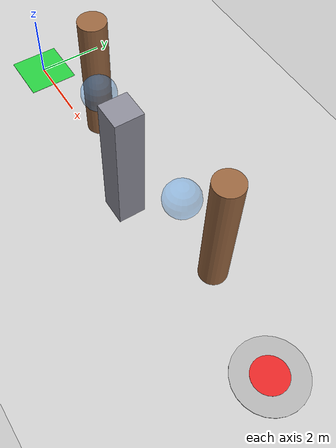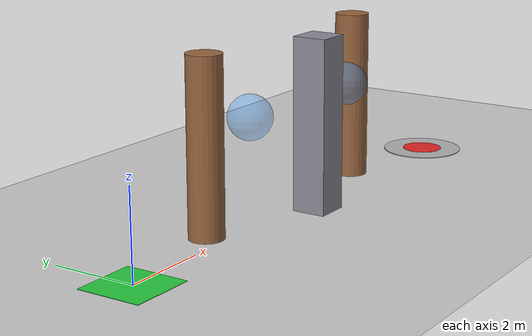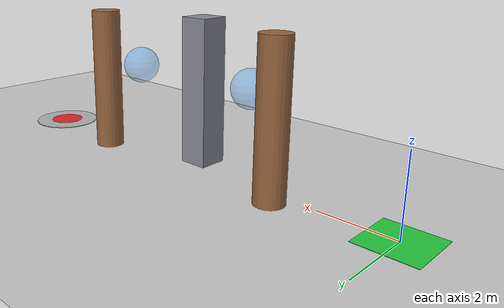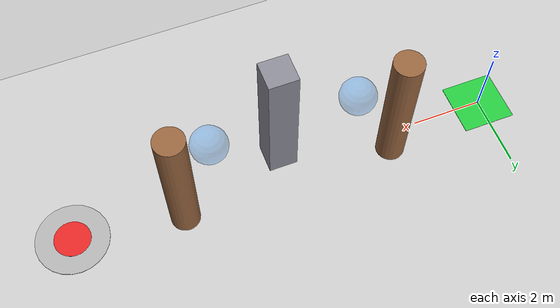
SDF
<?xml version="1.0" ?>
<sdf version="1.6">
  <world name="map2_slalom">

    <!-- ===== 기본 환경 ===== -->
    <include><uri>model://sun</uri></include>
    <include><uri>model://ground_plane</uri></include>

    <!-- 물리 엔진 설정 (practice.world 와 동일) -->
    <physics name='default_physics' default='0' type='ode'>
      <gravity>0 0 -9.8066</gravity>
      <ode>
        <solver>
          <type>quick</type>
          <iters>10</iters>
          <sor>1.3</sor>
        </solver>
        <constraints>
          <cfm>0</cfm>
          <erp>0.2</erp>
          <contact_max_correcting_vel>100</contact_max_correcting_vel>
          <contact_surface_layer>0.001</contact_surface_layer>
        </constraints>
      </ode>
      <max_step_size>0.004</max_step_size>
      <real_time_factor>1</real_time_factor>
      <real_time_update_rate>250</real_time_update_rate>
    </physics>

    <!-- ===== Start 표시 ===== -->
    <include>
      <uri>model://start_marker</uri>
      <name>start_pad</name>
      <pose>0 0 0 0 0 0</pose>
    </include>

    <!-- ===== Waypoint 시각화 (map2_path.csv 의 직진 코리도) ===== -->
    <include>
      <uri>model://waypoint_marker</uri>
      <name>wp1_marker</name>
      <pose>4.0 0.0 2.5 0 0 0</pose>
    </include>
    <include>
      <uri>model://waypoint_marker</uri>
      <name>wp2_marker</name>
      <pose>8.0 0.0 2.5 0 0 0</pose>
    </include>

    <!-- ===== 장애물 : 좌/우 번갈아 배치한 슬라럼 ===== -->
    <!-- O1 : 원통, 경로 우측 (y=+0.45) -> 좌로 회피 -->
    <model name="obstacle_cyl_1">
      <static>true</static>
      <pose>3.0 0.45 2.0 0 0 0</pose>
      <link name="link">
        <collision name="collision">
          <geometry><cylinder><radius>0.4</radius><length>4.0</length></cylinder></geometry>
        </collision>
        <visual name="visual">
          <geometry><cylinder><radius>0.4</radius><length>4.0</length></cylinder></geometry>
          <material>
            <ambient>0.5 0.35 0.2 1</ambient>
            <diffuse>0.6 0.4 0.25 1</diffuse>
          </material>
        </visual>
      </link>
    </model>

    <!-- O2 : 사각 박스, 경로 좌측 (y=-0.45) -> 우로 회피 -->
    <model name="obstacle_box_1">
      <static>true</static>
      <pose>6.0 -0.45 2.0 0 0 0</pose>
      <link name="link">
        <collision name="collision">
          <geometry><box><size>0.8 0.8 4.0</size></box></geometry>
        </collision>
        <visual name="visual">
          <geometry><box><size>0.8 0.8 4.0</size></box></geometry>
          <material>
            <ambient>0.45 0.45 0.5 1</ambient>
            <diffuse>0.55 0.55 0.6 1</diffuse>
          </material>
        </visual>
      </link>
    </model>

    <!-- O3 : 원통, 경로 우측 (y=+0.45) -> 좌로 회피 -->
    <model name="obstacle_cyl_2">
      <static>true</static>
      <pose>9.0 0.45 2.0 0 0 0</pose>
      <link name="link">
        <collision name="collision">
          <geometry><cylinder><radius>0.4</radius><length>4.0</length></cylinder></geometry>
        </collision>
        <visual name="visual">
          <geometry><cylinder><radius>0.4</radius><length>4.0</length></cylinder></geometry>
          <material>
            <ambient>0.5 0.35 0.2 1</ambient>
            <diffuse>0.6 0.4 0.25 1</diffuse>
          </material>
        </visual>
      </link>
    </model>

    <!-- ===== 랜딩 패드 (경로 끝점 = goal) ===== -->
    <include>
      <uri>model://landing_pad</uri>
      <name>landing_pad</name>
      <pose>12.0 0.0 0 0 0 0</pose>
    </include>

    <!-- 카메라 시점 -->
    <gui fullscreen='0'>
      <camera name='user_camera'>
        <pose>6 -8 8 0 0.6 1.05</pose>
      </camera>
    </gui>

  </world>
</sdf>

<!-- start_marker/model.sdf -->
<sdf version='1.6'>
  <model name='start_marker'>
    <static>true</static>
    <link name='link'>
      <pose>0 0 0.005 0 0 0</pose>
      <visual name='visual'>
        <geometry>
          <box><size>1.5 1.5 0.01</size></box>
        </geometry>
        <material>
          <ambient>0.1 0.7 0.2 1</ambient>
          <diffuse>0.15 0.8 0.25 1</diffuse>
          <emissive>0.0 0.3 0.0 1</emissive>
        </material>
      </visual>
    </link>
  </model>
</sdf>

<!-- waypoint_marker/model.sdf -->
<sdf version='1.6'>
  <model name='waypoint_marker'>
    <static>true</static>
    <link name='link'>
      <visual name='visual'>
        <geometry>
          <sphere><radius>0.5</radius></sphere>
        </geometry>
        <material>
          <ambient>0.2 0.6 1.0 0.35</ambient>
          <diffuse>0.2 0.6 1.0 0.35</diffuse>
          <specular>0.1 0.1 0.1 1</specular>
        </material>
        <transparency>0.6</transparency>
        <cast_shadows>false</cast_shadows>
      </visual>
      <!-- collision 없음 → 드론이 통과 가능, 센서에도 인식 안 됨 -->
    </link>
  </model>
</sdf>

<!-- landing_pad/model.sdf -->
<sdf version='1.6'>
  <model name='landing_pad'>
    <static>true</static>

    <link name='pad_base'>
      <pose>0 0 0.01 0 0 0</pose>
      <collision name='collision'>
        <geometry>
          <cylinder><radius>1.0</radius><length>0.02</length></cylinder>
        </geometry>
      </collision>
      <visual name='visual'>
        <geometry>
          <cylinder><radius>1.0</radius><length>0.02</length></cylinder>
        </geometry>
        <material>
          <ambient>0.6 0.6 0.6 1</ambient>
          <diffuse>0.7 0.7 0.7 1</diffuse>
        </material>
      </visual>
    </link>

    <link name='red_target'>
      <pose>0 0 0.025 0 0 0</pose>
      <visual name='visual'>
        <geometry>
          <cylinder><radius>0.5</radius><length>0.005</length></cylinder>
        </geometry>
        <material>
          <ambient>0.8 0.1 0.1 1</ambient>
          <diffuse>0.9 0.15 0.15 1</diffuse>
          <emissive>0.4 0.0 0.0 1</emissive>
        </material>
      </visual>
    </link>

    <joint name='target_joint' type='fixed'>
      <parent>pad_base</parent>
      <child>red_target</child>
    </joint>
  </model>
</sdf>
